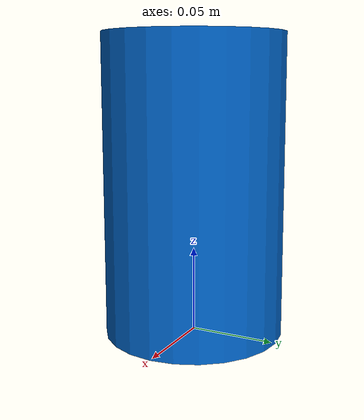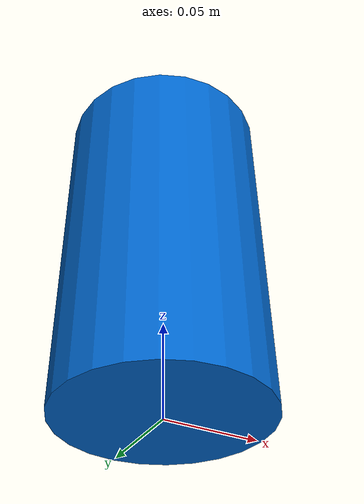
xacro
<?xml version="1.0"?>
<robot xmlns:xacro="http://www.ros.org/wiki/xacro" name="example">
  <xacro:include filename="$(find sensor_description)/urdf/vlp16.urdf.xacro"/>
  <xacro:property name="camera_height" value="0.1767" />
  <xacro:property name="camera_diameter" value="0.1055" />
  <xacro:property name="camera_mass" value="1.128" />
  <material name="blue">
    <color rgba="0 0.4 0.8 1" />
  </material>

  <!-- Base Footprint -->
  <link name="camera_foot" />

  <!-- Base Link -->
  <joint name="footprint" type="fixed" >
    <parent link="camera_foot" />
    <child link="occam" />
    <origin xyz="0 0 ${camera_height / 2}" rpy="0 0 0" />
  </joint>

  <link name="occam" >
    <visual>
      <geometry>
	<cylinder length="${camera_height}" radius="${camera_diameter / 2}"/>
      </geometry>
      <material name="blue"/>
    </visual>
  </link>

  <link name="/occam/image0" />

  <joint name="camera_inside_joint" type="fixed">
    <parent link="camera_foot" />
    <child link ="/occam/image0" />
    <origin xyz="${camera_diameter / 2} 0 ${(camera_height / 2) + 0.06}" rpy="-1.57 0 -1.57" />
  </joint>

</robot>
